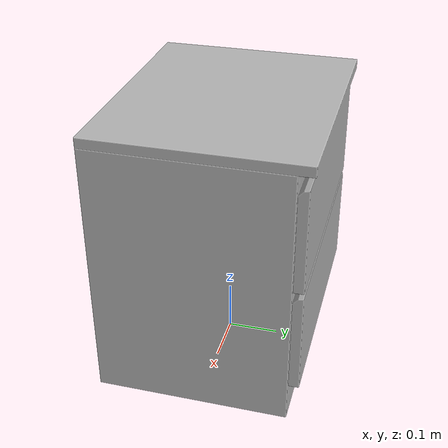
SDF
<?xml version='1.0'?>
<sdf version='1.4'>
  <model name='146'>
    <pose>0 0 0 0 0 0</pose>
    <static>true</static>
    <link name='link'>
      <collision name='collision'>
        <pose>0 0 0 0 0 0</pose>
        <geometry>
          <box>
            <size>0.48 0.4 2</size>
          </box>
        </geometry>
      </collision>
      <visual name='visual'>
        <pose>0 0 0 0 0 0</pose>
        <geometry>
          <mesh><uri>model://146/146.dae</uri></mesh>
        </geometry>
      </visual>
    </link>
  </model>
</sdf>
